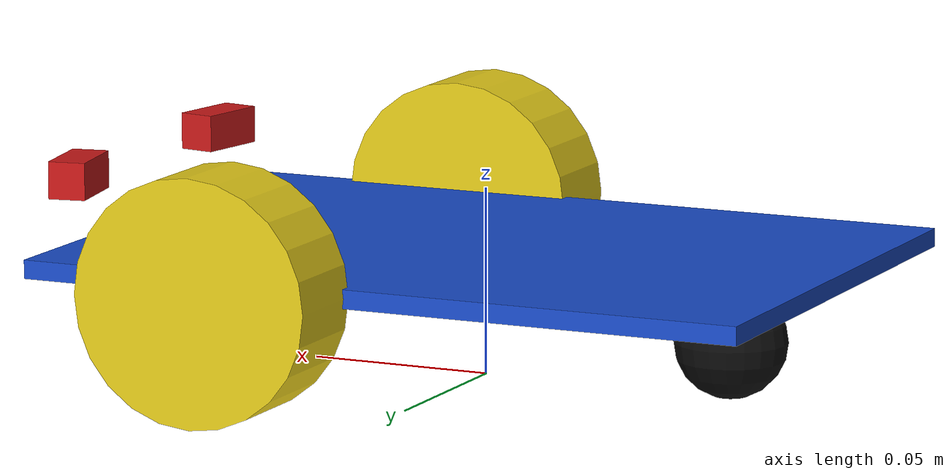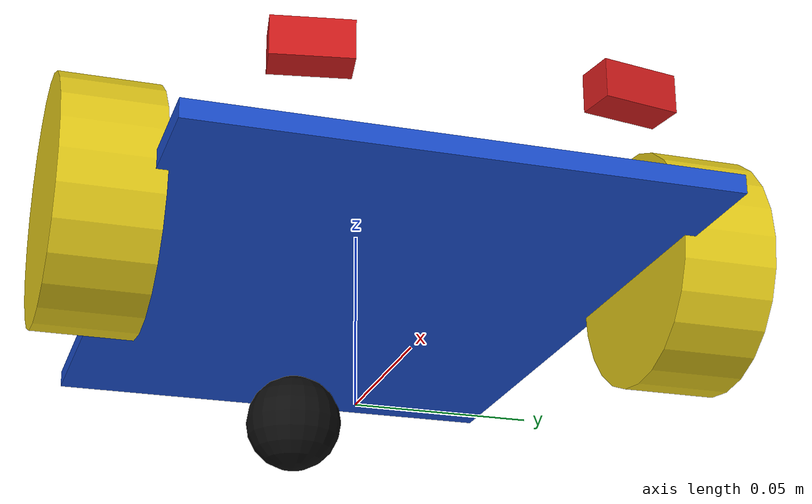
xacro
<?xml version="1.0"?>
<robot name="robot_autonomo_esp32" xmlns:xacro="http://www.ros.org/wiki/xacro">

  <!-- 1. MATERIALES Y PROPIEDADES FISICAS                               -->
  <material name="blue">
    <color rgba="0.1 0.3 0.8 1.0"/>
  </material>
  <material name="yellow">
    <color rgba="0.9 0.8 0.1 1.0"/>
  </material>
  <material name="black">
    <color rgba="0.05 0.05 0.05 1.0"/>
  </material>
  <material name="red">
    <color rgba="0.8 0.1 0.1 1.0"/>
  </material>

  <!-- 2. CHASIS BASE ACRILICO                                           -->
  <link name="base_footprint"/>

  <joint name="base_joint" type="fixed">
    <parent link="base_footprint"/>
    <child link="base_link"/>
    <origin xyz="0 0 0.0325" rpy="0 0 0"/>
  </joint>

  <link name="base_link">
    <visual>
      <geometry>
        <box size="0.20 0.14 0.005"/>
      </geometry>
      <material name="blue"/>
    </visual>
    <collision>
      <geometry>
        <box size="0.20 0.14 0.005"/>
      </geometry>
    </collision>
    <inertial>
      <mass value="0.45"/>
      <inertia ixx="0.001" ixy="0" ixz="0" iyy="0.002" iyz="0" izz="0.003"/>
    </inertial>
  </link>

  <!-- 3. RUEDAS MOTRICES (65 mm de diametro = radio 0.0325 m)           -->
  <!-- Rueda Izquierda -->
  <link name="wheel_left">
    <visual>
      <geometry>
        <cylinder radius="0.0325" length="0.026"/>
      </geometry>
      <material name="yellow"/>
    </visual>
    <collision>
      <geometry>
        <cylinder radius="0.0325" length="0.026"/>
      </geometry>
    </collision>
    <inertial>
      <mass value="0.05"/>
      <inertia ixx="0.00002" ixy="0" ixz="0" iyy="0.00002" iyz="0" izz="0.00003"/>
    </inertial>
  </link>

  <joint name="joint_wheel_left" type="continuous">
    <parent link="base_link"/>
    <child link="wheel_left"/>
    <origin xyz="0.04 0.08 0" rpy="-1.5708 0 0"/>
    <axis xyz="0 0 1"/>
  </joint>

  <!-- Rueda Derecha -->
  <link name="wheel_right">
    <visual>
      <geometry>
        <cylinder radius="0.0325" length="0.026"/>
      </geometry>
      <material name="yellow"/>
    </visual>
    <collision>
      <geometry>
        <cylinder radius="0.0325" length="0.026"/>
      </geometry>
    </collision>
    <inertial>
      <mass value="0.05"/>
      <inertia ixx="0.00002" ixy="0" ixz="0" iyy="0.00002" iyz="0" izz="0.00003"/>
    </inertial>
  </link>

  <joint name="joint_wheel_right" type="continuous">
    <parent link="base_link"/>
    <child link="wheel_right"/>
    <origin xyz="0.04 -0.08 0" rpy="-1.5708 0 0"/>
    <axis xyz="0 0 1"/>
  </joint>

  <!-- Rueda Loca Posterior (Caster Ball) -->
  <link name="caster_wheel">
    <visual>
      <geometry>
        <sphere radius="0.015"/>
      </geometry>
      <material name="black"/>
    </visual>
    <collision>
      <geometry>
        <sphere radius="0.015"/>
      </geometry>
    </collision>
    <inertial>
      <mass value="0.02"/>
      <inertia ixx="0.000002" ixy="0" ixz="0" iyy="0.000002" iyz="0" izz="0.000002"/>
    </inertial>
  </link>

  <joint name="joint_caster" type="fixed">
    <parent link="base_link"/>
    <child link="caster_wheel"/>
    <origin xyz="-0.07 0 -0.0175" rpy="0 0 0"/>
  </joint>

  <!-- 4. SENSORES ToF VL53L0X (Frontal Izquierdo y Derecho)             -->
  <link name="tof_left_link">
    <visual>
      <geometry><box size="0.01 0.02 0.01"/></geometry>
      <material name="red"/>
    </visual>
  </link>

  <joint name="joint_tof_left" type="fixed">
    <parent link="base_link"/>
    <child link="tof_left_link"/>
    <origin xyz="0.10 0.04 0.02" rpy="0 0 0.1745"/> <!-- Angulado 10 deg -->
  </joint>

  <link name="tof_right_link">
    <visual>
      <geometry><box size="0.01 0.02 0.01"/></geometry>
      <material name="red"/>
    </visual>
  </link>

  <joint name="joint_tof_right" type="fixed">
    <parent link="base_link"/>
    <child link="tof_right_link"/>
    <origin xyz="0.10 -0.04 0.02" rpy="0 0 -0.1745"/> <!-- Angulado -10 deg -->
  </joint>

  <!-- 5. PLUGINS DE GAZEBO                                              -->
  <!-- Plugin de Traccion Diferencial 2WD -->
  <gazebo>
    <plugin name="diff_drive" filename="libgazebo_ros_diff_drive.so">
      <update_rate>50</update_rate>
      <left_joint>joint_wheel_left</left_joint>
      <right_joint>joint_wheel_right</right_joint>
      <wheel_separation>0.16</wheel_separation>
      <wheel_diameter>0.065</wheel_diameter>
      <max_wheel_torque>1.5</max_wheel_torque>
      <max_wheel_acceleration>2.0</max_wheel_acceleration>
      <command_topic>cmd_vel</command_topic>
      <publish_odom>true</publish_odom>
      <publish_odom_tf>true</publish_odom_tf>
      <publish_wheel_tf>true</publish_wheel_tf>
      <odometry_topic>odom</odometry_topic>
      <odometry_frame>odom</odometry_frame>
      <robot_base_frame>base_footprint</robot_base_frame>
    </plugin>
  </gazebo>

  <!-- Plugin IMU MPU6050 (100 Hz con ruido gaussiano) -->
  <gazebo reference="base_link">
    <sensor name="mpu6050_imu" type="imu">
      <always_on>true</always_on>
      <update_rate>100</update_rate>
      <plugin name="imu_plugin" filename="libgazebo_ros_imu_sensor.so">
        <ros>
          <remapping>~/out:=/imu/data</remapping>
        </ros>
      </plugin>
    </sensor>
  </gazebo>

  <!-- Plugin Ray / ToF Izquierdo -->
  <gazebo reference="tof_left_link">
    <sensor type="ray" name="vl53l0x_left">
      <always_on>true</always_on>
      <update_rate>50</update_rate>
      <ray>
        <scan>
          <horizontal>
            <samples>5</samples>
            <resolution>1</resolution>
            <min_angle>-0.218</min_angle>
            <max_angle>0.218</max_angle>
          </horizontal>
        </scan>
        <range>
          <min>0.02</min>
          <max>2.0</max>
          <resolution>0.001</resolution>
        </range>
      </ray>
      <plugin name="tof_left_controller" filename="libgazebo_ros_ray_sensor.so">
        <ros>
          <remapping>~/out:=/distance/left</remapping>
        </ros>
        <output_type>sensor_msgs/Range</output_type>
      </plugin>
    </sensor>
  </gazebo>

  <!-- Plugin Ray / ToF Derecho -->
  <gazebo reference="tof_right_link">
    <sensor type="ray" name="vl53l0x_right">
      <always_on>true</always_on>
      <update_rate>50</update_rate>
      <ray>
        <scan>
          <horizontal>
            <samples>5</samples>
            <resolution>1</resolution>
            <min_angle>-0.218</min_angle>
            <max_angle>0.218</max_angle>
          </horizontal>
        </scan>
        <range>
          <min>0.02</min>
          <max>2.0</max>
          <resolution>0.001</resolution>
        </range>
      </ray>
      <plugin name="tof_right_controller" filename="libgazebo_ros_ray_sensor.so">
        <ros>
          <remapping>~/out:=/distance/right</remapping>
        </ros>
        <output_type>sensor_msgs/Range</output_type>
      </plugin>
    </sensor>
  </gazebo>

  <!-- 6. PROPIEDADES DE FRICCION ODE (Para subida/bajada de rampa y plano)-->
  <!-- Rueda Izquierda: Goma de 65mm con alto agarre -->
  <gazebo reference="wheel_left">
    <mu1>1.5</mu1>
    <mu2>1.5</mu2>
    <kp>1000000.0</kp>
    <kd>100.0</kd>
    <minDepth>0.001</minDepth>
    <maxVel>0.1</maxVel>
    <material>Gazebo/Yellow</material>
  </gazebo>

  <!-- Rueda Derecha: Goma de 65mm con alto agarre -->
  <gazebo reference="wheel_right">
    <mu1>1.5</mu1>
    <mu2>1.5</mu2>
    <kp>1000000.0</kp>
    <kd>100.0</kd>
    <minDepth>0.001</minDepth>
    <maxVel>0.1</maxVel>
    <material>Gazebo/Yellow</material>
  </gazebo>

  <!-- Rueda Loca Posterior: Esfera de bajo coeficiente de friccion -->
  <gazebo reference="caster_wheel">
    <mu1>0.001</mu1>
    <mu2>0.001</mu2>
    <kp>1000000.0</kp>
    <kd>100.0</kd>
    <minDepth>0.001</minDepth>
    <material>Gazebo/Black</material>
  </gazebo>

</robot>
